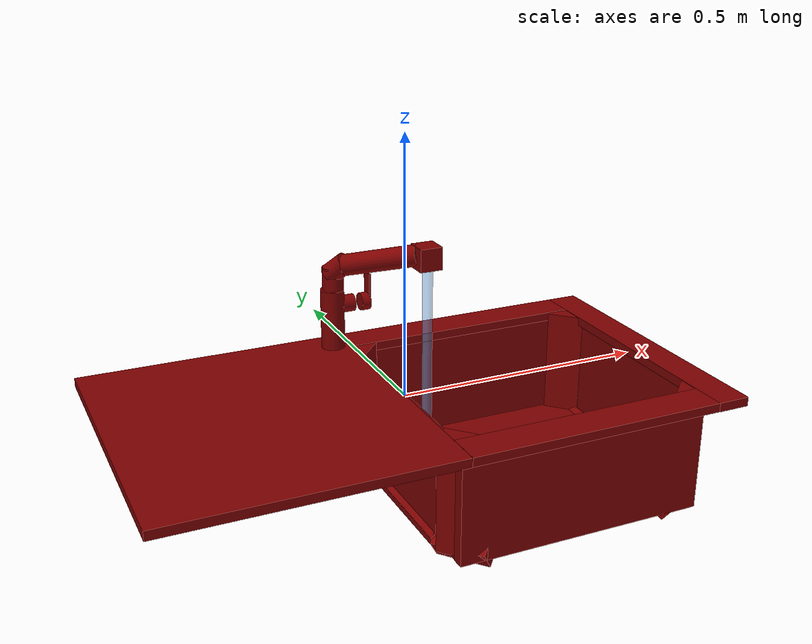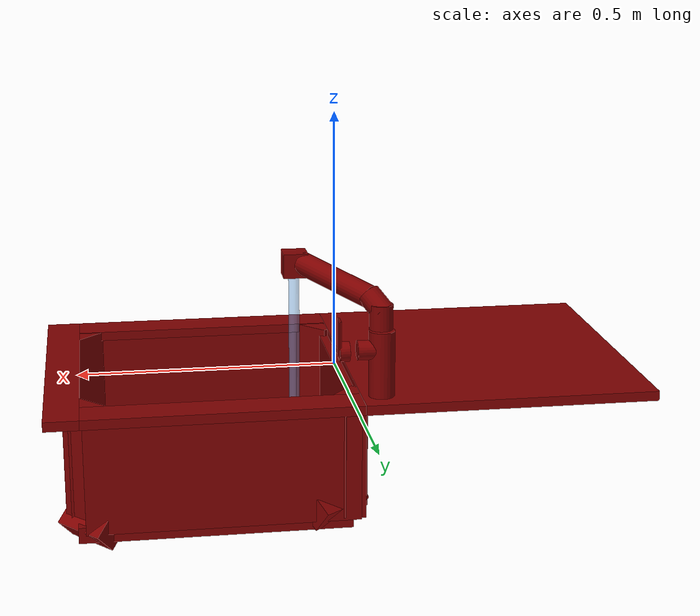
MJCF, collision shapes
<?xml version='1.0' encoding='UTF-8'?>
<mujoco model="model">
  <option timestep="0.002" gravity="0.0 0.0 -9.81"/>
  <compiler angle="radian"/>
  <asset>
    <mesh file="visuals/handle.obj" name="handle_vis"/>
    <mesh file="visuals/Body001.obj" name="Body001_vis"/>
    <mesh file="visuals/spout.obj" name="spout_vis"/>
    <texture file="visuals/T_BC001.png" name="Body001_material" type="2d"/>
    <material name="Body001_material" rgba="1 1 1 1.0" texture="Body001_material" shininess="0.35739320516586304" specular="0.5"/>
    <texture file="visuals/T_BC001.png" name="handle_material" type="2d"/>
    <material name="handle_material" rgba="1 1 1 1.0" texture="handle_material" shininess="0.35739320516586304" specular="0.5"/>
    <texture file="visuals/T_BC001.png" name="spout_material" type="2d"/>
    <material name="spout_material" rgba="1 1 1 1.0" texture="spout_material" shininess="0.35739320516586304" specular="0.5"/>
  </asset>
  <default>
    <default class="visual">
      <geom conaffinity="0" contype="0" group="1" type="mesh"/>
    </default>
    <default class="collision">
      <geom group="0" rgba="0.5 0 0 0.5" solimp="0.998 0.998 0.001" solref="0.001 2"/>
    </default>
    <default class="spawn">
      <geom group="0" rgba="1 1 1 0.5" contype="0" conaffinity="0"/>
      <site group="0" rgba="1 1 1 0.5"/>
    </default>
    <default class="region">
      <geom group="1" conaffinity="0" contype="0" rgba="0 1 0 0"/>
    </default>
  </default>
  <worldbody>
    <body>
      <body name="object">
        <geom mesh="Body001_vis" type="mesh" solimp="0.998 0.998 0.001" solref="0.001 1" friction="0.95 0.3 0.1" class="visual" material="Body001_material"/>
        <geom type="box" pos="-0.28712267 0.00000000 0.00668835" size="0.2736888527870178 0.30101001262664795 0.00918702781200409" quat="1.0 0.0 0.0 0.0" class="collision"/>
        <geom type="box" pos="0.52865720 0.00000000 0.00673412" size="0.032154303044080734 0.30101001262664795 0.009141258895397186" quat="1.0 0.0 0.0 0.0" class="collision"/>
        <geom type="box" pos="0.51098406 -0.00053082 -0.11260310" size="0.008321618661284447 0.21207192540168762 0.11421234905719757" quat="1.0 0.0 0.0 0.0" class="collision"/>
        <geom type="box" pos="-0.01045336 0.02672406 -0.11260310" size="0.013463507406413555 0.21207192540168762 0.11421234905719757" quat="1.0 0.0 0.0 0.0" class="collision"/>
        <geom type="box" pos="0.24241276 0.26563823 0.00676343" size="0.2546788454055786 0.03537175804376602 0.009111916646361351" quat="1.0 0.0 0.0 0.0" class="collision"/>
        <geom type="box" pos="0.24078743 0.24547322 -0.11128637" size="0.2530535161495209 0.01516951248049736 0.1090444028377533" quat="1.0 0.0 0.0 0.0" class="collision"/>
        <geom type="box" pos="0.24078743 -0.24943241 -0.11128637" size="0.2530535161495209 0.012662705965340137 0.1090444028377533" quat="1.0 0.0 0.0 0.0" class="collision"/>
        <geom type="box" pos="0.24213886 -0.26548213 0.00698836" size="0.2552923560142517 0.035527847707271576 0.008886951021850109" quat="1.0 0.0 0.0 0.0" class="collision"/>
        <geom type="box" pos="0.25460321 0.00688298 -0.22367645" size="0.2530520260334015 0.24492380023002625 0.015351872891187668" quat="1.0 0.0 0.0 0.0" class="collision"/>
        <geom type="cylinder" pos="0.25292259 0.09532702 -0.24495285" size="0.0708804577589035 0.011441648006439209" quat="1.0 0.0 0.0 0.0" class="collision"/>
        <geom type="cylinder" pos="-0.04991923 0.24602255 0.07760908" size="0.024180535227060318 0.062119390815496445" quat="1.0 0.0 0.0 0.0" class="collision"/>
        <geom type="cylinder" pos="-0.02078672 0.24785118 0.10461930" size="0.017893292009830475 0.016760164871811867" quat="0.7071068286895752 -0.0 0.7071067690849304 0.0" class="collision"/>
        <geom type="box" pos="0.48917788 0.21131237 -0.10057241" size="0.018300360068678856 0.038068220019340515 0.11528453230857849" quat="0.9275355339050293 0.0 0.0 0.3737350404262543" class="collision"/>
        <geom type="box" pos="0.48921710 -0.21867850 -0.10057241" size="0.018300360068678856 0.038068220019340515 0.11528453230857849" quat="0.38563087582588196 0.0 0.0 0.9226531386375427" class="collision"/>
        <geom type="box" pos="0.00623966 -0.22015445 -0.10057241" size="0.018300360068678856 0.038068220019340515 0.11528453230857849" quat="0.3669290840625763 0.0 -0.0 -0.9302489161491394" class="collision"/>
        <geom type="box" pos="0.00720979 0.22216813 -0.10057241" size="0.018300360068678856 0.038068220019340515 0.11528453230857849" quat="0.9334632158279419 0.0 -0.0 -0.3586731255054474" class="collision"/>
        <geom type="box" pos="0.25460321 -0.23006552 -0.21946558" size="0.1979919672012329 0.017220091074705124 0.025875912979245186" quat="0.910473644733429 0.41356709599494934 0.0 0.0" class="collision"/>
        <geom type="box" pos="-0.00534226 0.01114738 -0.21106234" size="0.1979919672012329 0.017220091074705124 0.025875912979245186" quat="0.20827989280223846 0.6757362484931946 0.6757362484931946 0.20827995240688324" class="collision"/>
        <geom type="box" pos="0.50059563 0.00826408 -0.22102275" size="0.1979919672012329 0.017220089212059975 0.015161111950874329" quat="0.649133563041687 0.2804023027420044 0.2804023325443268 0.6491338014602661" class="collision"/>
        <geom type="box" pos="0.48651353 0.21867622 -0.22255445" size="0.018300356343388557 0.05297768861055374 0.025608424097299576" quat="0.8635186553001404 -0.15017087757587433 0.3499581813812256 0.3306259214878082" class="collision"/>
        <geom type="box" pos="0.48070437 -0.20080024 -0.22039306" size="0.018300356343388557 0.05297768861055374 0.025608424097299576" quat="0.8686248064041138 0.12839116156101227 0.2975769639015198 -0.37477269768714905" class="collision"/>
        <geom type="box" pos="0.01948304 -0.21153709 -0.21431814" size="0.018300356343388557 0.05297768488526344 0.025608424097299576" quat="0.3267918527126312 0.3041425347328186 0.11195367574691772 -0.8877898454666138" class="collision"/>
        <geom type="box" pos="0.03043422 0.22834171 -0.20679488" size="0.018300356343388557 0.05297768488526344 0.025608424097299576" quat="0.4189768135547638 -0.29057538509368896 0.14353471994400024 0.8481875658035278" class="collision"/>
        <body name="handle">
          <joint axis="1.0 0.0 0.0" pos="0.01406837 0.24807134 0.10319050" limited="true" name="handle_temp_joint" type="hinge" range="-0.7853981633974483 0.7853981633974483" damping="0.5" frictionloss="1" armature="2"/>
          <joint axis="0.0 1.0 0.0" pos="0.01406837 0.24807134 0.10319050" limited="true" name="handle_joint" type="hinge" range="0 0.5" damping="0.5" frictionloss="1" armature="2"/>
          <geom mesh="handle_vis" type="mesh" solimp="0.998 0.998 0.001" solref="0.001 1" friction="0.95 0.3 0.1" class="visual" material="handle_material"/>
          <geom type="cylinder" pos="0.01986481 0.24785118 0.10342464" size="0.01828182302415371 0.009385824203491211" quat="0.7071068286895752 -0.0 0.7071067690849304 0.0" class="collision"/>
          <geom name="handle_main" type="box" pos="0.02817542 0.24869947 0.12767760" size="0.0016845897771418095 0.013875380158424377 0.03605586662888527" quat="1.0 0.0 0.0 0.0" class="collision"/>
        </body>
        <body name="spout">
          <joint axis="0.0 0.0 1.0" pos="-0.05127537 0.24459161 0.19871486" limited="true" name="spout_joint" range="-0.7853981633974483 0.7853981633974483" type="hinge" damping="10"/>
          <site type="cylinder" rgba="0.5 0.75 1 0.5" size="0.010150724090635777 0.22796685993671417" pos="0.09169418 0.09784080 0.00074656" name="water"/>
          <geom mesh="spout_vis" type="mesh" solimp="0.998 0.998 0.001" solref="0.001 1" friction="0.95 0.3 0.1" class="visual" material="spout_material"/>
          <geom type="cylinder" pos="0.02296654 0.16447449 0.21573190" size="0.02158275619149208 0.080698661506176" quat="0.7809773683547974 0.4956744909286499 0.36428695917129517 0.10805641114711761" class="collision" name="spout_main"/>
          <geom type="box" pos="0.09023865 0.09976724 0.23252804" size="0.02299872413277626 0.02299872413277626 0.02299872413277626" quat="1.0 0.0 0.0 0.0" class="collision"/>
          <geom type="cylinder" pos="-0.04888329 0.24282993 0.16486033" size="0.021778030321002007 0.023167377337813377" quat="1.0 0.0 0.0 0.0" class="collision"/>
          <geom type="cylinder" pos="-0.04139204 0.23307954 0.18682011" size="0.021778030321002007 0.023167377337813377" quat="0.904144823551178 0.32398682832717896 0.2762206494808197 0.03545193746685982" class="collision"/>
        </body>
        <geom class="region" name="reg_basin" type="box" pos="0.24529050000000002 0.00026188500000000337 -0.096135345" size="0.19977865 0.18808955500000002 0.111663935"/>
        <geom class="region" name="reg_main" type="box" pos="0.0 0.0 -0.12025951500000001" size="0.56181152 0.30201001 0.137134895"/>
      </body>
    </body>
  </worldbody>
  <actuator>
    <motor name="handle_joint_actuator" joint="handle_joint" gear="10"/>
    <motor name="handle_temp_joint_actuator" joint="handle_temp_joint" gear="10"/>
    <motor name="spout_joint_actuator" joint="spout_joint" gear="10"/>
  </actuator>
</mujoco>
